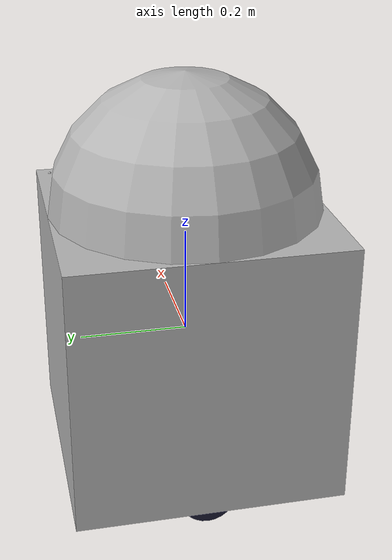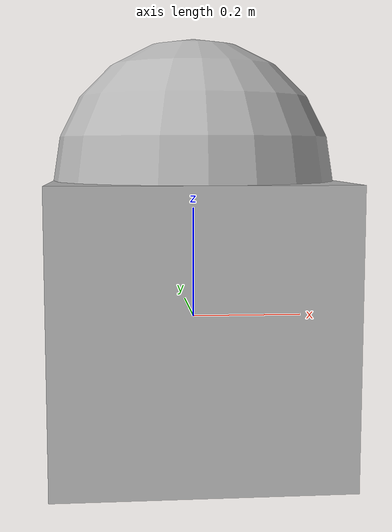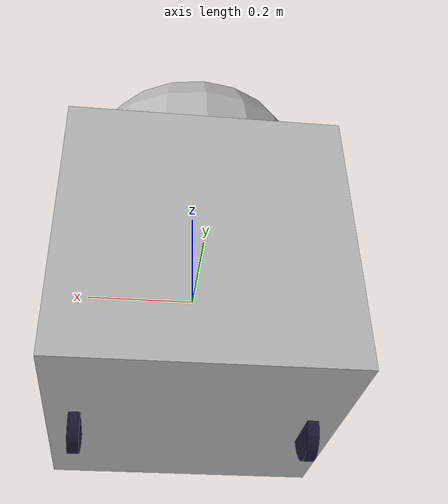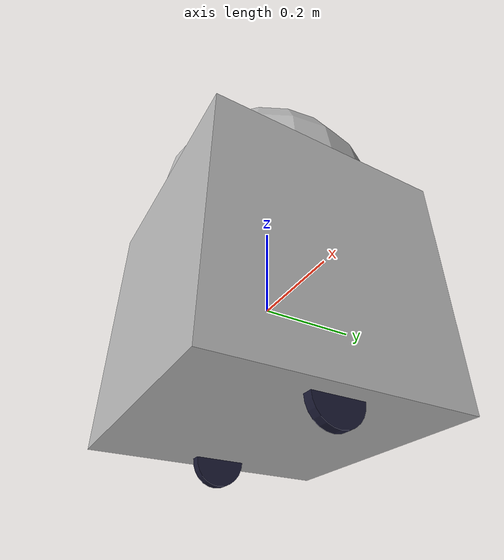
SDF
<?xml version="1.0" encoding="utf-8"?>
<sdf version="1.6">
  <model name="Color Tutorial Model">
    <static>true</static>
    <link name="robot_link">
      <collision name="body_collision">
        <geometry>
          <box>
            <size>1 1 1</size>
          </box>
        </geometry>
      </collision>
      <visual name="wheel1_visual">
        <pose>-0.2 0 -0.25 0 1.57079 0</pose>
        <geometry>
          <cylinder>
            <radius>0.05</radius>
            <length>0.02</length>
          </cylinder>
        </geometry>
                <material> <!-- Wheel material -->
          <ambient>0.1 0.1 0.1 1</ambient>
          <diffuse>0.1 0.1 0.2 1</diffuse>
          <specular>0 0 0 0</specular>
          <emissive>0 0 0 1</emissive>
        </material> <!-- End wheel material -->
      </visual>
      <visual name="wheel2_visual">
        <pose>0.2 0 -0.25 0 1.57079 0</pose>
        <geometry>
          <cylinder>
            <radius>0.05</radius>
            <length>0.02</length>
          </cylinder>
        </geometry>
                <material> <!-- Wheel material -->
          <ambient>0.1 0.1 0.1 1</ambient>
          <diffuse>0.1 0.1 0.2 1</diffuse>
          <specular>0 0 0 0</specular>
          <emissive>0 0 0 1</emissive>
        </material> <!-- End wheel material -->
      </visual>
      <visual name="power_led_visual">
        <pose>0.225 0.225 0.25 0 0 0</pose>
        <geometry>
          <sphere>
            <radius>0.003</radius>
          </sphere>
        </geometry>
      </visual>
      <visual name="body_visual">
        <geometry>
          <box>
            <size>0.5 0.5 0.5</size>
          </box>
        </geometry>
        <material>
        <script>
        <uri>model://Cubo/materials/scripts</uri>
        <uri>model://Cubo/materials/textures</uri>
        <name>RepeatedTexture</name>
       </script>
        </material>
      </visual>
      <visual name="head_visual">
        <pose>0 0 0.25 0 0 -2.5</pose>
        <geometry>
          <sphere>
            <radius>0.25</radius>
          </sphere>
        </geometry>
      </visual>
    </link>
  </model>
</sdf>
